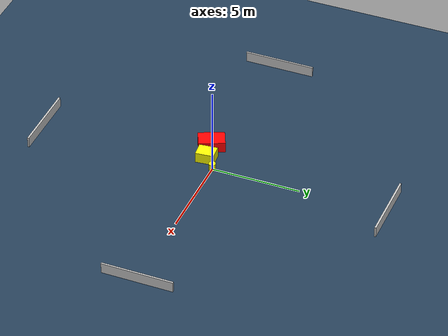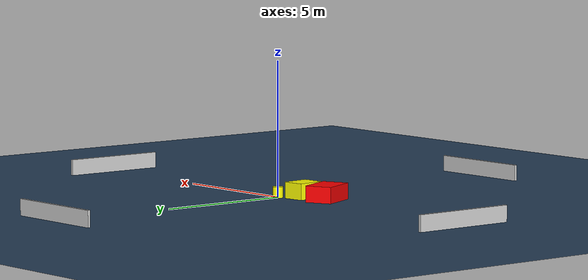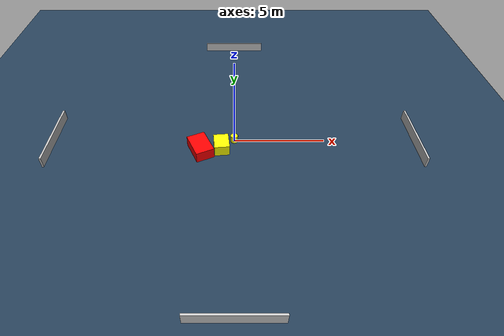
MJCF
<?xml version="1.0" ?>
<mujoco model="generated_environment">
  <option timestep="0.01" integrator="RK4" cone="elliptic"/>
  <default>
    <geom density="1"/>
  </default>
  <asset>
    <texture builtin="gradient" height="3072" name="skybox" rgb1="0.3 0.5 0.7" rgb2="0 0 0" type="skybox" width="512"/>
    <texture builtin="checker" height="300" name="groundplane" rgb1="0.2 0.3 0.4" rgb2="0.1 0.2 0.3" type="2d" width="300"/>
    <material name="groundplane" reflectance="0.2" texrepeat="5 5" texture="groundplane"/>
  </asset>
  <worldbody>
    <light dir="0 0 -1" directional="true" pos="0 0 1.5"/>
    <geom condim="3" friction="0.5 0.005 0.001" material="groundplane" name="floor" pos="0 0 0" size="0 0 0.05" type="plane"/>
    <body name="walls">
      <geom name="wall_1" condim="4" pos="-10.0 0.0 0.3" rgba="0.800000011920929 0.800000011920929 0.800000011920929 1.0" size="0.05 2.0 0.3" type="box"/>
      <geom name="wall_2" condim="4" pos="10.0 0.0 0.3" rgba="0.800000011920929 0.800000011920929 0.800000011920929 1.0" size="0.05 2.0 0.3" type="box"/>
      <geom name="wall_3" condim="4" pos="0.0 -10.0 0.3" rgba="0.800000011920929 0.800000011920929 0.800000011920929 1.0" size="2.0 0.05 0.3" type="box"/>
      <geom name="wall_4" condim="4" pos="0.0 10.0 0.3" rgba="0.800000011920929 0.800000011920929 0.800000011920929 1.0" size="2.0 0.05 0.3" type="box"/>
    </body>
    <body name="robot">
      <joint name="joint_x" type="slide" pos="0 0 0" axis="1 0 0"/>
      <joint name="joint_y" type="slide" pos="0 0 0" axis="0 1 0"/>
      <geom name="robot" type="cylinder" pos="0.0 0.0 0.2" size="0.2 0.2 0.0" mass="5.0" friction="1.0 0.005 0.0001" condim="4" rgba="1.0 1.0 0.0 1.0"/>
    </body>
    <body name="obstacle_1_movable">
      <geom name="obstacle_1_movable" condim="4" pos="-0.6943565647251618 -0.6176476386486891 0.3" euler="0 0 95.40485625645672" friction="0.0 0.005 0.001" rgba="1.0 1.0 0.0 1.0" size="0.519695936075655 0.4086193057923086 0.3" type="box" mass="0.1"/>
      <joint type="free"/>
    </body>
    <body name="obstacle_2_static">
      <geom name="obstacle_2_static" condim="4" pos="-1.826680061758519 -0.792312106633149 0.3" euler="0 0 204.43582049982348" friction="0.0 0.005 0.001" rgba="1.0 0.0 0.0 1.0" size="0.5024465027576577 0.7399436965739448 0.3" type="box"/>
    </body>
  </worldbody>
  <actuator>
    <motor name="actuator_x" joint="joint_x" gear="1" ctrlrange="-1 1"/>
    <motor name="actuator_y" joint="joint_y" gear="1" ctrlrange="-1 1"/>
  </actuator>
</mujoco>
